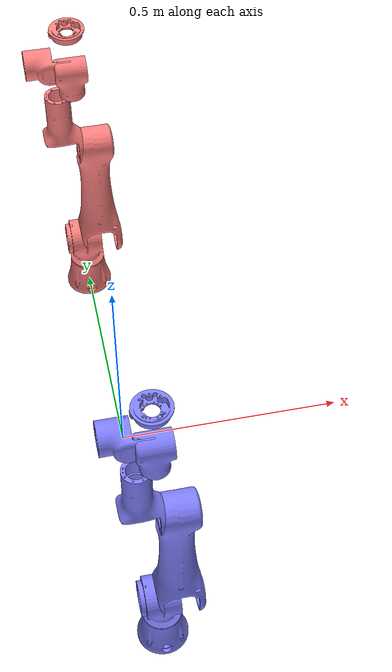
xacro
<?xml version="1.0"?>
<robot xmlns:xacro="http://www.ros.org/wiki/xacro" name="dual_arm620">
    <xacro:arg name="initial_positions_file" default="initial_positions.yaml" />

    <!-- Import dual_arm620 urdf file -->
    <xacro:include filename="$(find robot_description)/urdf/dual_arm620.urdf" />

    <!-- Import control_xacro -->
    <xacro:include filename="dual_arm620.ros2_control.xacro" />

    <xacro:dual_arm620_ros2_control name="FakeSystem" initial_positions_file="$(arg initial_positions_file)"/>

</robot>

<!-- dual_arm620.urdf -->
<robot name="dual_arm620">
  <!-- World link -->
  <link name="world"/>

  <!-- ========== 左臂 (Left Arm) ========== -->
  <link name="left_base_link">
    <inertial>
      <origin xyz="-3.493E-05 1.9321E-08 0.041738" rpy="0 0 0" />
      <mass value="1.235" />
      <inertia
        ixx="0.00069305"
        ixy="-2.4629E-09"
        ixz="-7.7538E-07"
        iyy="0.00069224"
        iyz="1.1986E-09"
        izz="0.00059207" />
    </inertial>
    <visual>
      <origin xyz="0 0 0" rpy="0 0 0" />
      <geometry>
        <mesh filename="package://robot_description/meshes/arm620/base_link.STL" />
      </geometry>
      <material name="">
        <color rgba="0.5 0.5 1 1" />
      </material>
    </visual>
    <collision>
      <origin xyz="0 0 0" rpy="0 0 0" />
      <geometry>
        <mesh filename="package://robot_description/meshes/arm620/base_link.STL" />
      </geometry>
    </collision>
  </link>

  <link name="left_Link1">
    <inertial>
      <origin xyz="0.0083082 -9.0414E-07 0.066279" rpy="0 0 0" />
      <mass value="1.0225" />
      <inertia
        ixx="0.00033468"
        ixy="-1.0629E-08"
        ixz="-6.9769E-06"
        iyy="0.0002898"
        iyz="-1.0465E-08"
        izz="0.00026359" />
    </inertial>
    <visual>
      <origin xyz="0 0 0" rpy="0 0 0" />
      <geometry>
        <mesh filename="package://robot_description/meshes/arm620/Link1.STL" />
      </geometry>
      <material name="">
        <color rgba="0.5 0.5 1 1" />
      </material>
    </visual>
    <collision>
      <origin xyz="0 0 0" rpy="0 0 0" />
      <geometry>
        <mesh filename="package://robot_description/meshes/arm620/Link1.STL" />
      </geometry>
    </collision>
  </link>

  <link name="left_Link2">
    <inertial>
      <origin xyz="1.6176E-06 0.19554 -0.0019139" rpy="0 0 0" />
      <mass value="1.925" />
      <inertia
        ixx="0.0092613"
        ixy="2.9244E-08"
        ixz="-6.7107E-09"
        iyy="0.00075528"
        iyz="-1.5539E-05"
        izz="0.0090845" />
    </inertial>
    <visual>
      <origin xyz="0 0 0" rpy="0 0 0" />
      <geometry>
        <mesh filename="package://robot_description/meshes/arm620/Link2.STL" />
      </geometry>
      <material name="">
        <color rgba="0.5 0.5 1 1" />
      </material>
    </visual>
    <collision>
      <origin xyz="0 0 0" rpy="0 0 0" />
      <geometry>
        <mesh filename="package://robot_description/meshes/arm620/Link2.STL" />
      </geometry>
    </collision>
  </link>

  <link name="left_Link3">
    <inertial>
      <origin xyz="1.8251E-05 -0.073691 0.010704" rpy="0 0 0" />
      <mass value="0.73" />
      <inertia
        ixx="0.00059318"
        ixy="1.2073E-07"
        ixz="1.9423E-08"
        iyy="0.00015563"
        iyz="-0.00011324"
        izz="0.00055379" />
    </inertial>
    <visual>
      <origin xyz="0 0 0" rpy="0 0 0" />
      <geometry>
        <mesh filename="package://robot_description/meshes/arm620/Link3.STL" />
      </geometry>
      <material name="">
        <color rgba="0.5 0.5 1 1" />
      </material>
    </visual>
    <collision>
      <origin xyz="0 0 0" rpy="0 0 0" />
      <geometry>
        <mesh filename="package://robot_description/meshes/arm620/Link3.STL" />
      </geometry>
    </collision>
  </link>

  <link name="left_Link4">
    <inertial>
      <origin xyz="0.0059454 2.5068E-05 0.051809" rpy="0 0 0" />
      <mass value="0.5174" />
      <inertia
        ixx="0.00010342"
        ixy="-7.9433E-09"
        ixz="-7.9245E-06"
        iyy="0.0001193"
        iyz="-1.6196E-08"
        izz="8.5637E-05" />
    </inertial>
    <visual>
      <origin xyz="0 0 0" rpy="0 0 0" />
      <geometry>
        <mesh filename="package://robot_description/meshes/arm620/Link4.STL" />
      </geometry>
      <material name="">
        <color rgba="0.5 0.5 1 1" />
      </material>
    </visual>
    <collision>
      <origin xyz="0 0 0" rpy="0 0 0" />
      <geometry>
        <mesh filename="package://robot_description/meshes/arm620/Link4.STL" />
      </geometry>
    </collision>
  </link>

  <link name="left_Link5">
    <inertial>
      <origin xyz="0.0095168 0.061153 1.0106E-05" rpy="0 0 0" />
      <mass value="0.7233" />
      <inertia
        ixx="0.00013586"
        ixy="3.9115E-05"
        ixz="3.3963E-08"
        iyy="0.00010055"
        iyz="-1.3885E-07"
        izz="0.0001594" />
    </inertial>
    <visual>
      <origin xyz="0 0 0" rpy="0 0 0" />
      <geometry>
        <mesh filename="package://robot_description/meshes/arm620/Link5.STL" />
      </geometry>
      <material name="">
        <color rgba="0.5 0.5 1 1" />
      </material>
    </visual>
    <collision>
      <origin xyz="0 0 0" rpy="0 0 0" />
      <geometry>
        <mesh filename="package://robot_description/meshes/arm620/Link5.STL" />
      </geometry>
    </collision>
  </link>

  <link name="left_Link6">
    <inertial>
      <origin xyz="-0.0023023 0.0016027 0.010682" rpy="0 0 0" />
      <mass value="0.0953" />
      <inertia
        ixx="1.3179E-05"
        ixy="-9.4826E-08"
        ixz="2.2437E-07"
        iyy="1.3416E-05"
        iyz="-1.8512E-07"
        izz="2.4622E-05" />
    </inertial>
    <visual>
      <origin xyz="0 0 0" rpy="0 0 0" />
      <geometry>
        <mesh filename="package://robot_description/meshes/arm620/Link6.STL" />
      </geometry>
      <material name="">
        <color rgba="0.5 0.5 1 1" />
      </material>
    </visual>
    <collision>
      <origin xyz="0 0 0" rpy="0 0 0" />
      <geometry>
        <mesh filename="package://robot_description/meshes/arm620/Link6.STL" />
      </geometry>
    </collision>
  </link>

  <!-- 左臂关节连接 -->
  <joint name="left_base_joint" type="fixed">
    <parent link="world"/>
    <child link="left_base_link"/>
    <origin xyz="0 -0.5 0" rpy="0 0 0" />
    <axis xyz="0 0 1" />
  </joint>

  <joint name="left_joint1" type="revolute">
    <origin xyz="0 0 0.084" rpy="0 0 0" />
    <parent link="left_base_link" />
    <child link="left_Link1" />
    <axis xyz="0 0 1" />
    <limit lower="-2.967" upper="2.967" effort="51" velocity="3.14" />
  </joint>

  <joint name="left_joint2" type="revolute">
    <origin xyz="0 0 0.068718" rpy="1.5708 0 -1.5708" />
    <parent link="left_Link1" />
    <child link="left_Link2" />
    <axis xyz="0 0 -1" />
    <limit lower="-1.5708" upper="1.5708" effort="51" velocity="3.14" />
  </joint>

  <joint name="left_joint3" type="revolute">
    <origin xyz="0 0.30025 0" rpy="-3.1416 0 0" />
    <parent link="left_Link2" />
    <child link="left_Link3" />
    <axis xyz="0 0 1" />
    <limit lower="-1.5708" upper="1.5708" effort="51" velocity="3.14" />
  </joint>

  <joint name="left_joint4" type="revolute">
    <origin xyz="0 -0.15558 3.5E-05" rpy="1.5708 -1.5708 0" />
    <parent link="left_Link3" />
    <child link="left_Link4" />
    <axis xyz="0 0 1" />
    <limit lower="-2.967" upper="2.967" effort="9" velocity="3.14" />
  </joint>

  <joint name="left_joint5" type="revolute">
    <origin xyz="-3.5E-05 1.5362E-05 0.064223" rpy="1.5708 0 0" />
    <parent link="left_Link4" />
    <child link="left_Link5" />
    <axis xyz="1 0 0" />
    <limit lower="-1.5708" upper="1.5708" effort="9" velocity="3.14" />
  </joint>

  <joint name="left_joint6" type="revolute">
    <origin xyz="-0.00047523 0.095552 0" rpy="-1.5709 0 0" />
    <parent link="left_Link5" />
    <child link="left_Link6" />
    <axis xyz="0 0 1" />
    <limit lower="-2.967" upper="2.967" effort="9" velocity="3.14" />
  </joint>

  <!-- ========== 右臂 (Right Arm) ========== -->
  <link name="right_base_link">
    <inertial>
      <origin xyz="-3.493E-05 1.9321E-08 0.041738" rpy="0 0 0" />
      <mass value="1.235" />
      <inertia
        ixx="0.00069305"
        ixy="-2.4629E-09"
        ixz="-7.7538E-07"
        iyy="0.00069224"
        iyz="1.1986E-09"
        izz="0.00059207" />
    </inertial>
    <visual>
      <origin xyz="0 0 0" rpy="0 0 0" />
      <geometry>
        <mesh filename="package://robot_description/meshes/arm620/base_link.STL" />
      </geometry>
      <material name="">
        <color rgba="1 0.5 0.5 1" />
      </material>
    </visual>
    <collision>
      <origin xyz="0 0 0" rpy="0 0 0" />
      <geometry>
        <mesh filename="package://robot_description/meshes/arm620/base_link.STL" />
      </geometry>
    </collision>
  </link>

  <link name="right_Link1">
    <inertial>
      <origin xyz="0.0083082 -9.0414E-07 0.066279" rpy="0 0 0" />
      <mass value="1.0225" />
      <inertia
        ixx="0.00033468"
        ixy="-1.0629E-08"
        ixz="-6.9769E-06"
        iyy="0.0002898"
        iyz="-1.0465E-08"
        izz="0.00026359" />
    </inertial>
    <visual>
      <origin xyz="0 0 0" rpy="0 0 0" />
      <geometry>
        <mesh filename="package://robot_description/meshes/arm620/Link1.STL" />
      </geometry>
      <material name="">
        <color rgba="1 0.5 0.5 1" />
      </material>
    </visual>
    <collision>
      <origin xyz="0 0 0" rpy="0 0 0" />
      <geometry>
        <mesh filename="package://robot_description/meshes/arm620/Link1.STL" />
      </geometry>
    </collision>
  </link>

  <link name="right_Link2">
    <inertial>
      <origin xyz="1.6176E-06 0.19554 -0.0019139" rpy="0 0 0" />
      <mass value="1.925" />
      <inertia
        ixx="0.0092613"
        ixy="2.9244E-08"
        ixz="-6.7107E-09"
        iyy="0.00075528"
        iyz="-1.5539E-05"
        izz="0.0090845" />
    </inertial>
    <visual>
      <origin xyz="0 0 0" rpy="0 0 0" />
      <geometry>
        <mesh filename="package://robot_description/meshes/arm620/Link2.STL" />
      </geometry>
      <material name="">
        <color rgba="1 0.5 0.5 1" />
      </material>
    </visual>
    <collision>
      <origin xyz="0 0 0" rpy="0 0 0" />
      <geometry>
        <mesh filename="package://robot_description/meshes/arm620/Link2.STL" />
      </geometry>
    </collision>
  </link>

  <link name="right_Link3">
    <inertial>
      <origin xyz="1.8251E-05 -0.073691 0.010704" rpy="0 0 0" />
      <mass value="0.73" />
      <inertia
        ixx="0.00059318"
        ixy="1.2073E-07"
        ixz="1.9423E-08"
        iyy="0.00015563"
        iyz="-0.00011324"
        izz="0.00055379" />
    </inertial>
    <visual>
      <origin xyz="0 0 0" rpy="0 0 0" />
      <geometry>
        <mesh filename="package://robot_description/meshes/arm620/Link3.STL" />
      </geometry>
      <material name="">
        <color rgba="1 0.5 0.5 1" />
      </material>
    </visual>
    <collision>
      <origin xyz="0 0 0" rpy="0 0 0" />
      <geometry>
        <mesh filename="package://robot_description/meshes/arm620/Link3.STL" />
      </geometry>
    </collision>
  </link>

  <link name="right_Link4">
    <inertial>
      <origin xyz="0.0059454 2.5068E-05 0.051809" rpy="0 0 0" />
      <mass value="0.5174" />
      <inertia
        ixx="0.00010342"
        ixy="-7.9433E-09"
        ixz="-7.9245E-06"
        iyy="0.0001193"
        iyz="-1.6196E-08"
        izz="8.5637E-05" />
    </inertial>
    <visual>
      <origin xyz="0 0 0" rpy="0 0 0" />
      <geometry>
        <mesh filename="package://robot_description/meshes/arm620/Link4.STL" />
      </geometry>
      <material name="">
        <color rgba="1 0.5 0.5 1" />
      </material>
    </visual>
    <collision>
      <origin xyz="0 0 0" rpy="0 0 0" />
      <geometry>
        <mesh filename="package://robot_description/meshes/arm620/Link4.STL" />
      </geometry>
    </collision>
  </link>

  <link name="right_Link5">
    <inertial>
      <origin xyz="0.0095168 0.061153 1.0106E-05" rpy="0 0 0" />
      <mass value="0.7233" />
      <inertia
        ixx="0.00013586"
        ixy="3.9115E-05"
        ixz="3.3963E-08"
        iyy="0.00010055"
        iyz="-1.3885E-07"
        izz="0.0001594" />
    </inertial>
    <visual>
      <origin xyz="0 0 0" rpy="0 0 0" />
      <geometry>
        <mesh filename="package://robot_description/meshes/arm620/Link5.STL" />
      </geometry>
      <material name="">
        <color rgba="1 0.5 0.5 1" />
      </material>
    </visual>
    <collision>
      <origin xyz="0 0 0" rpy="0 0 0" />
      <geometry>
        <mesh filename="package://robot_description/meshes/arm620/Link5.STL" />
      </geometry>
    </collision>
  </link>

  <link name="right_Link6">
    <inertial>
      <origin xyz="-0.0023023 0.0016027 0.010682" rpy="0 0 0" />
      <mass value="0.0953" />
      <inertia
        ixx="1.3179E-05"
        ixy="-9.4826E-08"
        ixz="2.2437E-07"
        iyy="1.3416E-05"
        iyz="-1.8512E-07"
        izz="2.4622E-05" />
    </inertial>
    <visual>
      <origin xyz="0 0 0" rpy="0 0 0" />
      <geometry>
        <mesh filename="package://robot_description/meshes/arm620/Link6.STL" />
      </geometry>
      <material name="">
        <color rgba="1 0.5 0.5 1" />
      </material>
    </visual>
    <collision>
      <origin xyz="0 0 0" rpy="0 0 0" />
      <geometry>
        <mesh filename="package://robot_description/meshes/arm620/Link6.STL" />
      </geometry>
    </collision>
  </link>

  <!-- 右臂关节连接 -->
  <joint name="right_base_joint" type="fixed">
    <parent link="world"/>
    <child link="right_base_link"/>
    <origin xyz="0 0.5 0" rpy="0 0 0" />
    <axis xyz="0 0 1" />
  </joint>

  <joint name="right_joint1" type="revolute">
    <origin xyz="0 0 0.084" rpy="0 0 0" />
    <parent link="right_base_link" />
    <child link="right_Link1" />
    <axis xyz="0 0 1" />
    <limit lower="-2.967" upper="2.967" effort="51" velocity="3.14" />
  </joint>

  <joint name="right_joint2" type="revolute">
    <origin xyz="0 0 0.068718" rpy="1.5708 0 -1.5708" />
    <parent link="right_Link1" />
    <child link="right_Link2" />
    <axis xyz="0 0 -1" />
    <limit lower="-1.5708" upper="1.5708" effort="51" velocity="3.14" />
  </joint>

  <joint name="right_joint3" type="revolute">
    <origin xyz="0 0.30025 0" rpy="-3.1416 0 0" />
    <parent link="right_Link2" />
    <child link="right_Link3" />
    <axis xyz="0 0 1" />
    <limit lower="-1.5708" upper="1.5708" effort="51" velocity="3.14" />
  </joint>

  <joint name="right_joint4" type="revolute">
    <origin xyz="0 -0.15558 3.5E-05" rpy="1.5708 -1.5708 0" />
    <parent link="right_Link3" />
    <child link="right_Link4" />
    <axis xyz="0 0 1" />
    <limit lower="-2.967" upper="2.967" effort="9" velocity="3.14" />
  </joint>

  <joint name="right_joint5" type="revolute">
    <origin xyz="-3.5E-05 1.5362E-05 0.064223" rpy="1.5708 0 0" />
    <parent link="right_Link4" />
    <child link="right_Link5" />
    <axis xyz="1 0 0" />
    <limit lower="-1.5708" upper="1.5708" effort="9" velocity="3.14" />
  </joint>

  <joint name="right_joint6" type="revolute">
    <origin xyz="-0.00047523 0.095552 0" rpy="-1.5709 0 0" />
    <parent link="right_Link5" />
    <child link="right_Link6" />
    <axis xyz="0 0 1" />
    <limit lower="-2.967" upper="2.967" effort="9" velocity="3.14" />
  </joint>

</robot>
